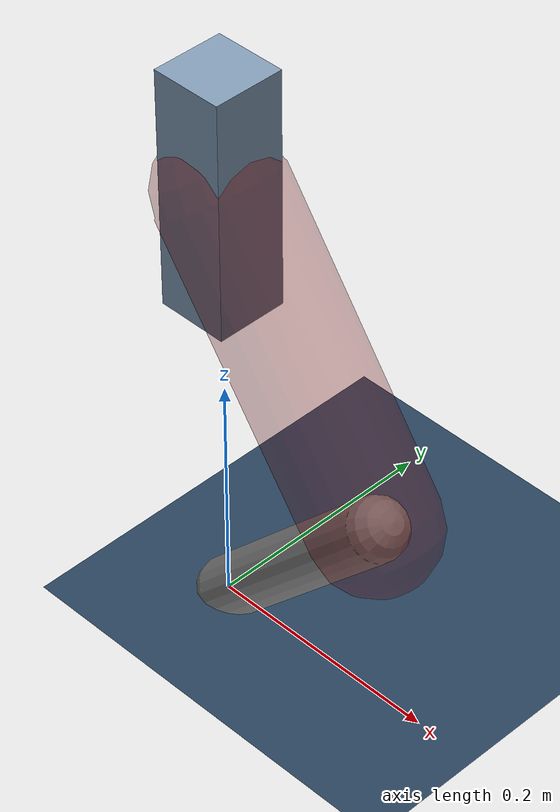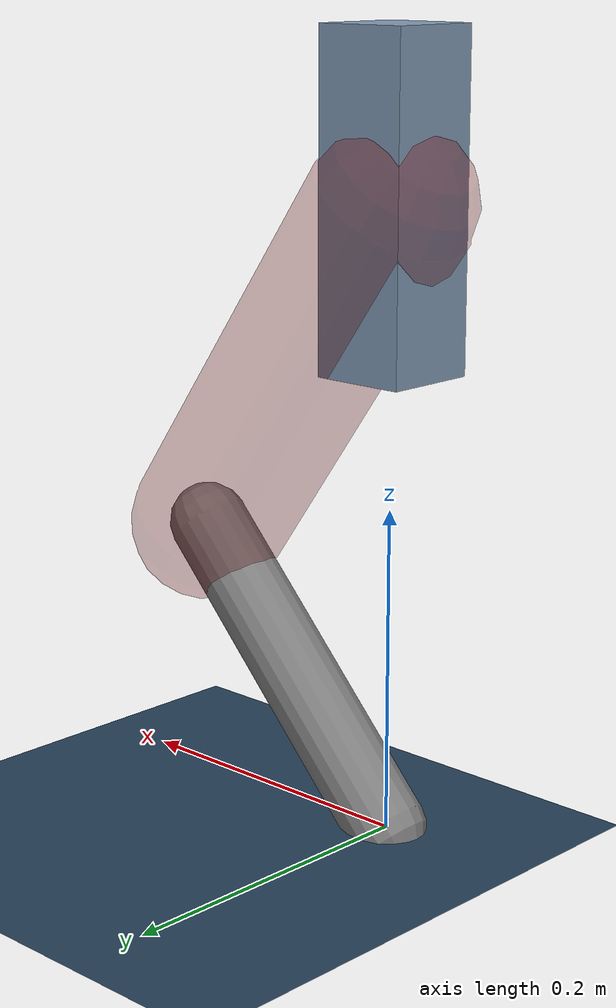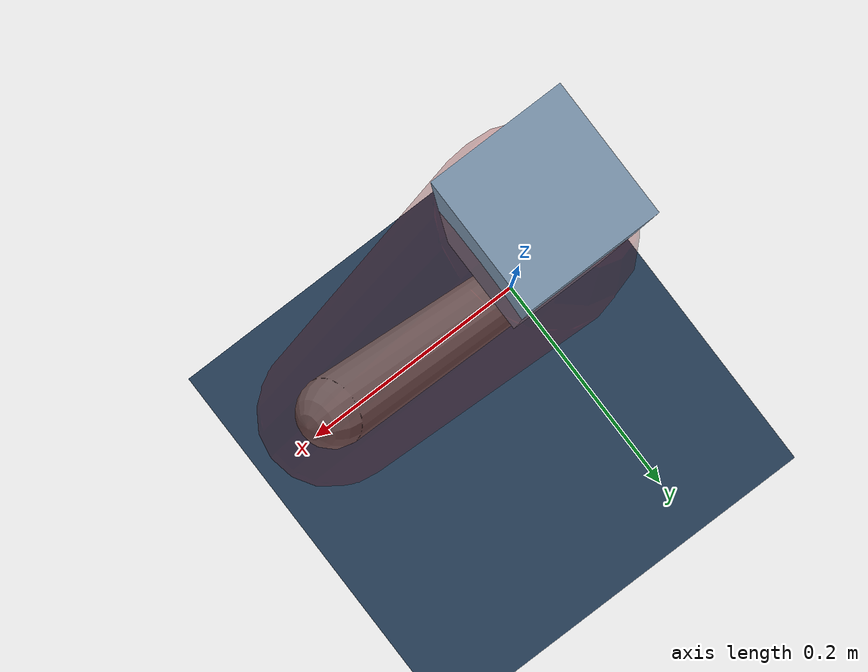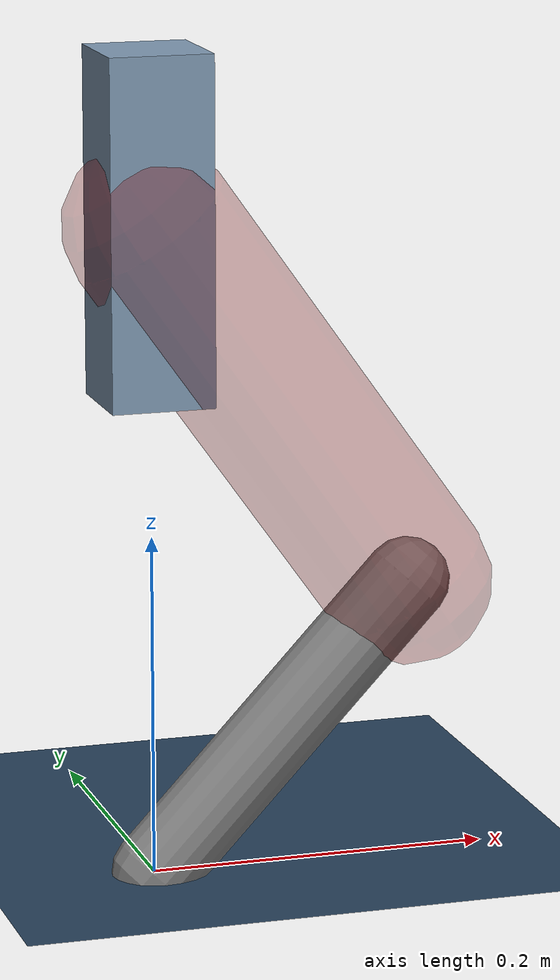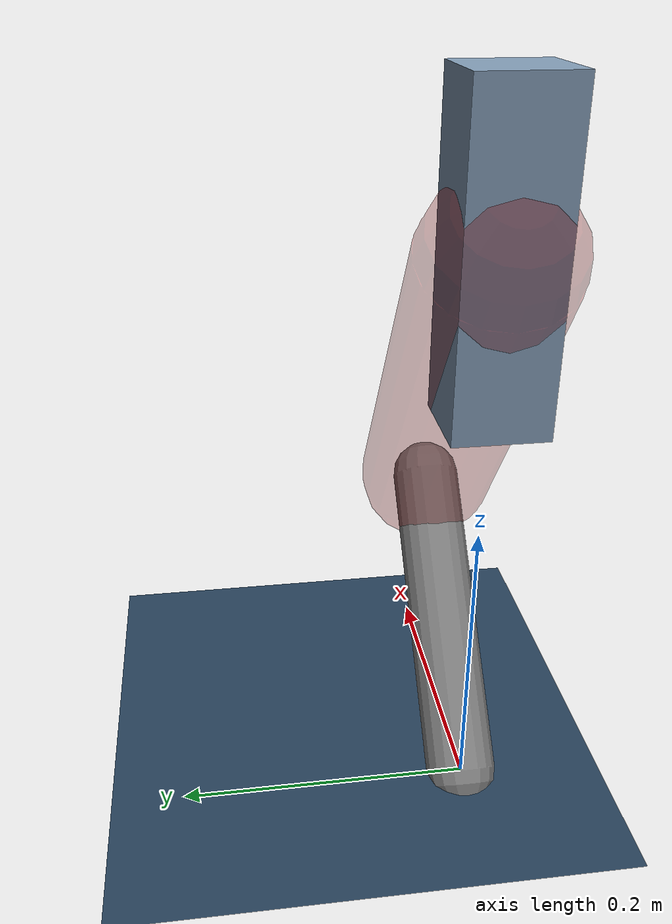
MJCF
<mujoco model="Hopper2D">
	<compiler inertiafromgeom="true" angle="radian" />
	<option timestep="0.001" integrator="implicit" cone="elliptic" solver="Newton" tolerance="1e-10" />

	<default>
		<geom contype="1" conaffinity="1" condim="3" friction="2 0.005 0.0001" solref="0.005 1" />
		<joint limited="true" damping="0.1" />
	</default>

	<asset>
		<texture name="skybox" type="skybox" builtin="gradient" rgb1=".4 .6 .8" rgb2="0 0 0" width="800" height="800" />
		<texture name="grid" type="2d" builtin="checker" rgb1=".1 .2 .3" rgb2=".2 .3 .4" width="300" height="300" mark="edge" markrgb=".2 .3 .4" />
		<material name="ground" texture="grid" texrepeat="1 1" texuniform="true" reflectance="0.1" />
		<material name="leg" rgba="0.5 0.6 0.7 1" />
	</asset>

	<worldbody>

		<geom name="floor" type="plane" size="5 5 0.25" material="ground" />

		<light directional="false" diffuse="0.8 0.8 0.8" specular="0.3 0.3 0.3" pos="0 0 2" dir="0 0 -1" />
		<light mode="targetbodycom" target="base" directional="false" diffuse="0.8 0.8 0.8" specular="0.3 0.3 0.3" pos="0 0 2" dir="0 0 -1" />

		<camera name="fixed" pos="0 -2 1" xyaxes="1 0 0 0 0 1" />
		<camera name="tracking" mode="trackcom" pos="0 -3 1" />

		<body name="root" pos="0 0 0.38008838828107183">
			<joint name="slide_x" type="slide" axis="1 0 0" range="-100 100" />
			<joint name="slide_z" type="slide" axis="0 0 1" range="0 10" />

			<body name="base" pos="0 0 0">
				<geom name="torso" type="box" size="0.03 0.03 0.1" mass="1.939" material="leg" />

				<body name="link1" pos="0 0 0" euler="0 0.9528768697041753 0">
					<joint type="hinge" axis="0 -1 0" pos="0 0 0" name="hinge1" limited="true" range="-3.14 3.14" stiffness="0" damping="0.1" />
					<geom name="thigh" type="capsule" fromto="0 0 0 0.26528740454576766 0 0" size="0.05" rgba="0.5 0 0 0.3" mass="0.8962472518189959" />

					<body name="link2" pos="0.26528740454576766 0 0" euler="0 1.3713186299238553 0">
						<joint type="hinge" axis="0 -1 0" pos="0 0 0" name="hinge2" limited="true" range="-3.14 3.14" stiffness="0" damping="0.1" />
						<geom name="shank" type="capsule" fromto="0 0 0 0.22465550460940273 0 0" size="0.025" mass="0.4215244036875222" />

					</body>
				</body>
			</body>
		</body>
	</worldbody>

	<actuator>
		<motor name="torque1" joint="hinge1" ctrlrange="-92.61598459242762 92.61598459242762" ctrllimited="true" gear="1" />
		<motor name="torque2" joint="hinge2" ctrlrange="-26.088451708617775 26.088451708617775" ctrllimited="true" gear="1" />
	</actuator>
</mujoco>
